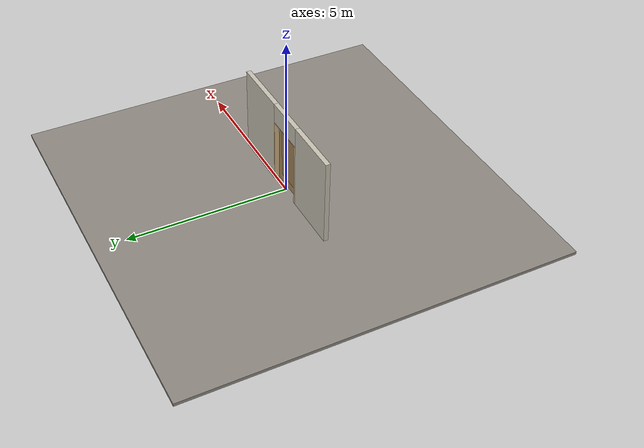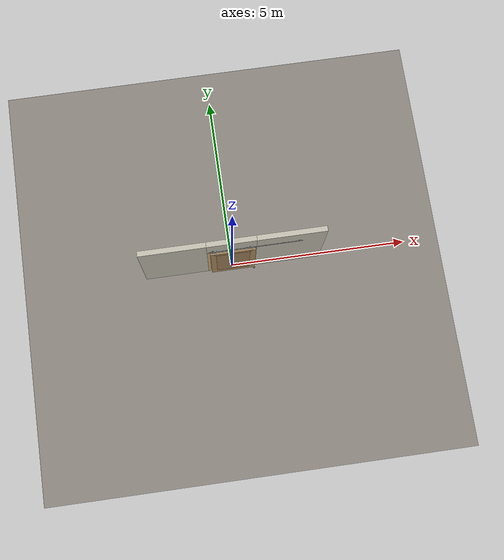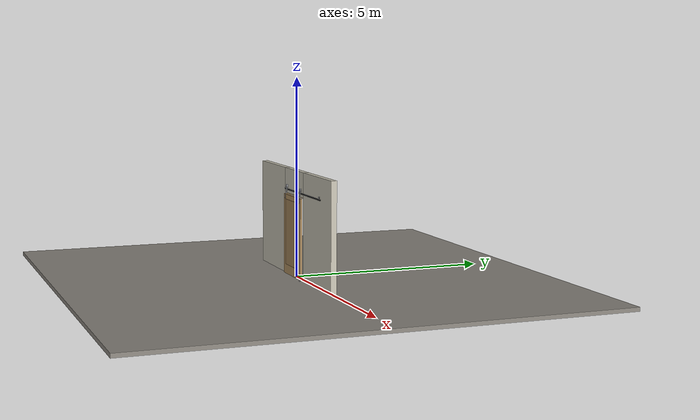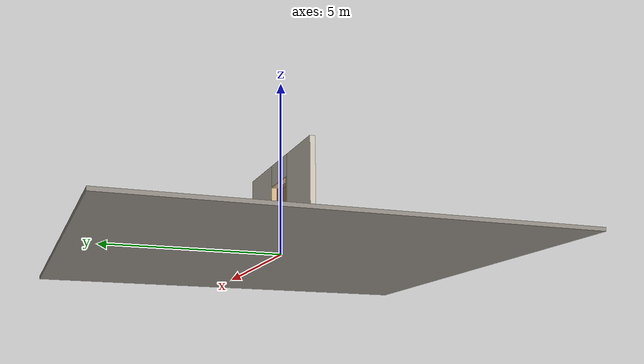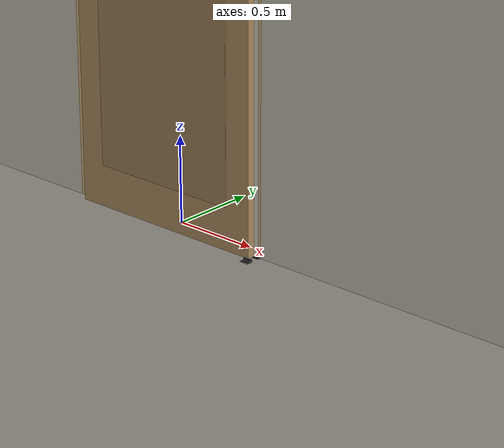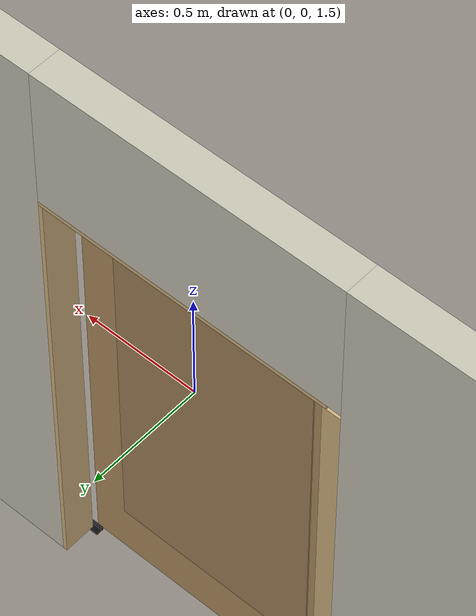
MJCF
<?xml version="1.0" ?>
<mujoco model="db0242_sliding_single_full">
  <compiler angle="radian" meshdir="../../hardware" texturedir="../../textures" autolimits="true" inertiafromgeom="false"/>
  <option timestep="0.002" integrator="implicitfast" cone="elliptic" impratio="10" noslip_iterations="3">
    <flag multiccd="enable"/>
  </option>
  <size memory="16M"/>
  <default>
    <geom condim="4" solref="0.005 1" solimp="0.95 0.99 0.001"/>
    <joint solreflimit="0.005 1" solimplimit="0.95 0.99 0.001"/>
    <tendon solreflimit="0.005 1"/>
    <equality solref="0.002 1"/>
  </default>
  <visual>
    <headlight ambient="0.4 0.4 0.4" diffuse="0.7 0.7 0.7" specular="0.2 0.2 0.2"/>
    <quality shadowsize="4096"/>
    <map znear="0.01" zfar="60"/>
  </visual>
  <asset>
    <material name="mat_floor" rgba="0.55 0.53 0.5 1" specular="0.2" shininess="0.15" reflectance="0"/>
    <material name="mat_wall" rgba="0.78 0.76 0.7 1" specular="0.2" shininess="0.1" reflectance="0"/>
    <material name="mat_frame" rgba="0.82 0.7 0.5 1" specular="0.2" shininess="0.45" reflectance="0"/>
    <material name="mat_track" rgba="0.05 0.05 0.05 1" specular="0.38" shininess="0.3" reflectance="0.12"/>
    <material name="mat_leaf" rgba="0.69 0.559 0.378 1" specular="0.2" shininess="0.45" reflectance="0"/>
    <material name="mat_leaf_panel" rgba="0.634 0.514 0.348 1" specular="0.2" shininess="0.45" reflectance="0"/>
    <material name="mat_roller" rgba="0.65 0.66 0.68 1" specular="0.74" shininess="0.5" reflectance="0.36"/>
    <material name="mat_hook" rgba="0.75 0.76 0.77 1" specular="0.8" shininess="0.65" reflectance="0.4"/>
    <texture name="skybox" type="skybox" builtin="gradient" rgb1="0.6 0.7 0.85" rgb2="0.9 0.92 0.95" width="256" height="256"/>
  </asset>
  <worldbody>
    <light name="sun" pos="1.5 -2.5 4" dir="-0.3 0.5 -0.8" directional="true" diffuse="0.8 0.8 0.8" specular="0.3 0.3 0.3" castshadow="true"/>
    <light name="fill" pos="-1.5 2.5 3" dir="0.3 -0.5 -0.7" directional="true" diffuse="0.35 0.35 0.4" castshadow="false"/>
    <camera name="robot_view" pos="0 -2.54875 1.73965" xyaxes="1 0 0 0 0.26963 0.962964" fovy="52"/>
    <camera name="far_view" pos="0 2.54875 1.73965" xyaxes="-1 0 0 0 -0.26963 0.962964" fovy="52"/>
    <camera name="iso" pos="1.93705 -2.14095 2.14745" xyaxes="0.741536 0.670913 0 -0.242917 0.268487 0.932151" fovy="46"/>
    <camera name="detail_handle" pos="0.48 -0.8 1.33" xyaxes="0.97561 0.219512 0 -0.070934 0.315262 0.94635" fovy="38"/>
    <geom name="floor" type="box" size="6 6 0.05" pos="0 0 -0.05" material="mat_floor" group="0" contype="1" conaffinity="1" friction="0.8 0.005 0.0001" density="2400"/>
    <geom name="wall_left" type="box" size="0.90075 0.0725 1.35" pos="-1.59925 0 1.35" material="mat_wall" group="0" contype="1" conaffinity="1" friction="0.6 0.005 0.0001" density="800"/>
    <geom name="wall_right" type="box" size="0.93075 0.0725 1.35" pos="1.56925 0 1.35" material="mat_wall" group="0" contype="1" conaffinity="1" friction="0.6 0.005 0.0001" density="800"/>
    <geom name="wall_header" type="box" size="0.6685 0.0725 0.3145" pos="-0.03 0 2.3855" material="mat_wall" group="0" contype="1" conaffinity="1" friction="0.6 0.005 0.0001" density="800"/>
    <geom name="jamb_r" type="box" size="0.0095 0.0725 1.026" pos="0.629 0 1.026" material="mat_frame" group="0" contype="1" conaffinity="1" friction="0.6 0.005 0.0001" density="300"/>
    <geom name="jamb_head" type="box" size="0.6385 0.0725 0.0095" pos="0 0 2.0615" material="mat_frame" group="0" contype="1" conaffinity="1" friction="0.6 0.005 0.0001" density="300"/>
    <geom name="flat_track" type="box" size="1.269 0.004 0.02" pos="0.6095 -0.0945 2.172" material="mat_track" group="0" contype="1" conaffinity="1" friction="0.6 0.005 0.0001" density="7850"/>
    <geom name="track_standoff_0" type="cylinder" size="0.012 0.009" pos="-0.6095 -0.0815 2.172" quat="0.707107 -0.707107 0 0" material="mat_track" group="1" contype="0" conaffinity="0" density="7850"/>
    <geom name="track_standoff_1" type="cylinder" size="0.012 0.009" pos="-0.1219 -0.0815 2.172" quat="0.707107 -0.707107 0 0" material="mat_track" group="1" contype="0" conaffinity="0" density="7850"/>
    <geom name="track_standoff_2" type="cylinder" size="0.012 0.009" pos="0.3657 -0.0815 2.172" quat="0.707107 -0.707107 0 0" material="mat_track" group="1" contype="0" conaffinity="0" density="7850"/>
    <geom name="track_standoff_3" type="cylinder" size="0.012 0.009" pos="0.8533 -0.0815 2.172" quat="0.707107 -0.707107 0 0" material="mat_track" group="1" contype="0" conaffinity="0" density="7850"/>
    <geom name="track_standoff_4" type="cylinder" size="0.012 0.009" pos="1.3409 -0.0815 2.172" quat="0.707107 -0.707107 0 0" material="mat_track" group="1" contype="0" conaffinity="0" density="7850"/>
    <geom name="track_standoff_5" type="cylinder" size="0.012 0.009" pos="1.8285 -0.0815 2.172" quat="0.707107 -0.707107 0 0" material="mat_track" group="1" contype="0" conaffinity="0" density="7850"/>
    <geom name="leaf_track_stop_l" type="box" size="0.012 0.016 0.027" pos="-0.5515 -0.0945 2.217" material="mat_track" group="0" contype="1" conaffinity="1" friction="0.6 0.005 0.0001" density="7850"/>
    <geom name="leaf_track_stop_r" type="box" size="0.012 0.016 0.027" pos="1.7705 -0.0945 2.217" material="mat_track" group="0" contype="1" conaffinity="1" friction="0.6 0.005 0.0001" density="7850"/>
    <geom name="jamb_latch_0" type="box" size="0.0395 0.0725 1.026" pos="-0.659 0 1.026" material="mat_frame" group="0" contype="1" conaffinity="1" friction="0.6 0.005 0.0001" density="300"/>
    <geom name="floor_guide_n" type="box" size="0.028 0.004 0.009" pos="0.6095 -0.1415 0.009" material="mat_track" group="0" contype="1" conaffinity="1" friction="0.6 0.005 0.0001" density="7850"/>
    <geom name="floor_guide_n_foot" type="box" size="0.028 0.018 0.002" pos="0.6095 -0.1555 0.002" material="mat_track" group="0" contype="1" conaffinity="1" friction="0.6 0.005 0.0001" density="7850"/>
    <geom name="floor_guide_p" type="box" size="0.028 0.004 0.009" pos="0.6095 -0.0875 0.009" material="mat_track" group="0" contype="1" conaffinity="1" friction="0.6 0.005 0.0001" density="7850"/>
    <geom name="floor_guide_p_foot" type="box" size="0.028 0.018 0.002" pos="0.6095 -0.0735 0.002" material="mat_track" group="0" contype="1" conaffinity="1" friction="0.6 0.005 0.0001" density="7850"/>
    <site name="approach_point" pos="0 -1.5 0" quat="1 0 0 0" size="0.05" rgba="0.2 0.9 0.2 0.5" group="4"/>
    <site name="goal_point" pos="0 1.5 0" quat="1 0 0 0" size="0.05" rgba="0.2 0.9 0.2 0.5" group="4"/>
    <site name="door_plane_center" pos="0 0 1.026" quat="1 0 0 0" size="0.02" rgba="0.2 0.9 0.2 0.5" group="4"/>
    <body name="leaf" pos="0 -0.1145 0">
      <inertial pos="0 0.000736 1.130237" mass="44.395341" quat="0.50054 0.499459 0.499459 -0.50054" diaginertia="5.962754869 18.719864935 24.666703544"/>
      <joint name="leaf_slide" type="slide" axis="1 0 0" limited="true" range="0 1.219" damping="4.219767" frictionloss="67.917653" armature="0.5"/>
      <geom name="leaf_slab" type="box" size="0.6095 0.022 1.016" pos="0 0 1.028" material="mat_leaf" group="0" contype="1" conaffinity="1" friction="0.35 0.005 0.0001" density="1"/>
      <geom name="leaf_panel_0_n" type="box" size="0.45541 0.003 0.83344" pos="0 -0.025 1.08896" material="mat_leaf_panel" group="1" contype="0" conaffinity="0" density="1"/>
      <geom name="leaf_panel_0_p" type="box" size="0.45541 0.003 0.83344" pos="0 0.025 1.08896" material="mat_leaf_panel" group="1" contype="0" conaffinity="0" density="1"/>
      <geom name="leaf_hanger_wheel_0" type="cylinder" size="0.05 0.01" pos="-0.4895 0.02 2.242" quat="0.707107 -0.707107 0 0" material="mat_roller" group="1" contype="0" conaffinity="0" density="7850"/>
      <geom name="leaf_hanger_mount_0" type="box" size="0.018 0.004 0.0725" pos="-0.4895 -0.026 1.9965" material="mat_roller" group="1" contype="0" conaffinity="0" density="7850"/>
      <geom name="leaf_hanger_strap_0" type="box" size="0.018 0.004 0.0925" pos="-0.4895 0.006 2.1615" material="mat_roller" group="1" contype="0" conaffinity="0" density="7850"/>
      <geom name="leaf_hanger_bend_0" type="box" size="0.018 0.02 0.004" pos="-0.4895 -0.01 2.069" material="mat_roller" group="1" contype="0" conaffinity="0" density="7850"/>
      <geom name="leaf_hanger_axle_0" type="cylinder" size="0.006 0.021" pos="-0.4895 0.013 2.242" quat="0.707107 -0.707107 0 0" material="mat_roller" group="1" contype="0" conaffinity="0" density="7850"/>
      <geom name="leaf_hanger_bolt_0_90" type="cylinder" size="0.007 0.004" pos="-0.4895 -0.032 1.954" quat="0.707107 -0.707107 0 0" material="mat_roller" group="1" contype="0" conaffinity="0" density="7850"/>
      <geom name="leaf_hanger_bolt_0_45" type="cylinder" size="0.007 0.004" pos="-0.4895 -0.032 1.999" quat="0.707107 -0.707107 0 0" material="mat_roller" group="1" contype="0" conaffinity="0" density="7850"/>
      <geom name="leaf_hanger_wheel_1" type="cylinder" size="0.05 0.01" pos="0.4895 0.02 2.242" quat="0.707107 -0.707107 0 0" material="mat_roller" group="1" contype="0" conaffinity="0" density="7850"/>
      <geom name="leaf_hanger_mount_1" type="box" size="0.018 0.004 0.0725" pos="0.4895 -0.026 1.9965" material="mat_roller" group="1" contype="0" conaffinity="0" density="7850"/>
      <geom name="leaf_hanger_strap_1" type="box" size="0.018 0.004 0.0925" pos="0.4895 0.006 2.1615" material="mat_roller" group="1" contype="0" conaffinity="0" density="7850"/>
      <geom name="leaf_hanger_bend_1" type="box" size="0.018 0.02 0.004" pos="0.4895 -0.01 2.069" material="mat_roller" group="1" contype="0" conaffinity="0" density="7850"/>
      <geom name="leaf_hanger_axle_1" type="cylinder" size="0.006 0.021" pos="0.4895 0.013 2.242" quat="0.707107 -0.707107 0 0" material="mat_roller" group="1" contype="0" conaffinity="0" density="7850"/>
      <geom name="leaf_hanger_bolt_1_90" type="cylinder" size="0.007 0.004" pos="0.4895 -0.032 1.954" quat="0.707107 -0.707107 0 0" material="mat_roller" group="1" contype="0" conaffinity="0" density="7850"/>
      <geom name="leaf_hanger_bolt_1_45" type="cylinder" size="0.007 0.004" pos="0.4895 -0.032 1.999" quat="0.707107 -0.707107 0 0" material="mat_roller" group="1" contype="0" conaffinity="0" density="7850"/>
      <site name="leaf_edge_mid" pos="-0.6095 0 1.028" quat="1 0 0 0" size="0.02" rgba="0.2 0.9 0.2 0.5" group="4"/>
    </body>
  </worldbody>
  <sensor>
    <jointpos name="leaf_slide_pos" joint="leaf_slide"/>
    <jointvel name="leaf_slide_vel" joint="leaf_slide"/>
  </sensor>
</mujoco>
